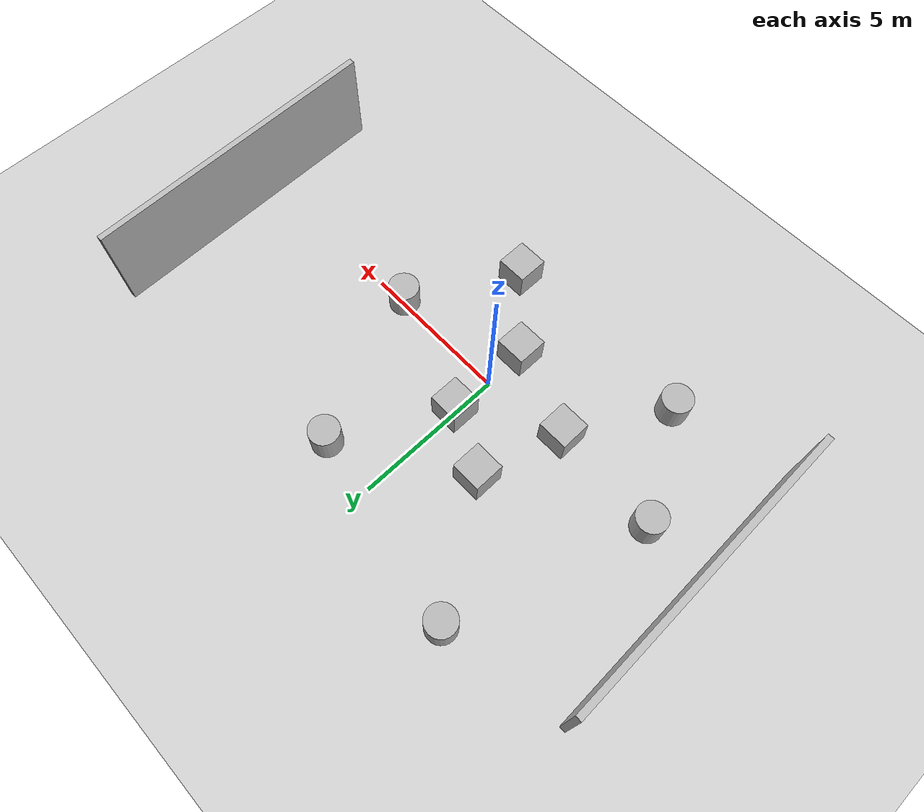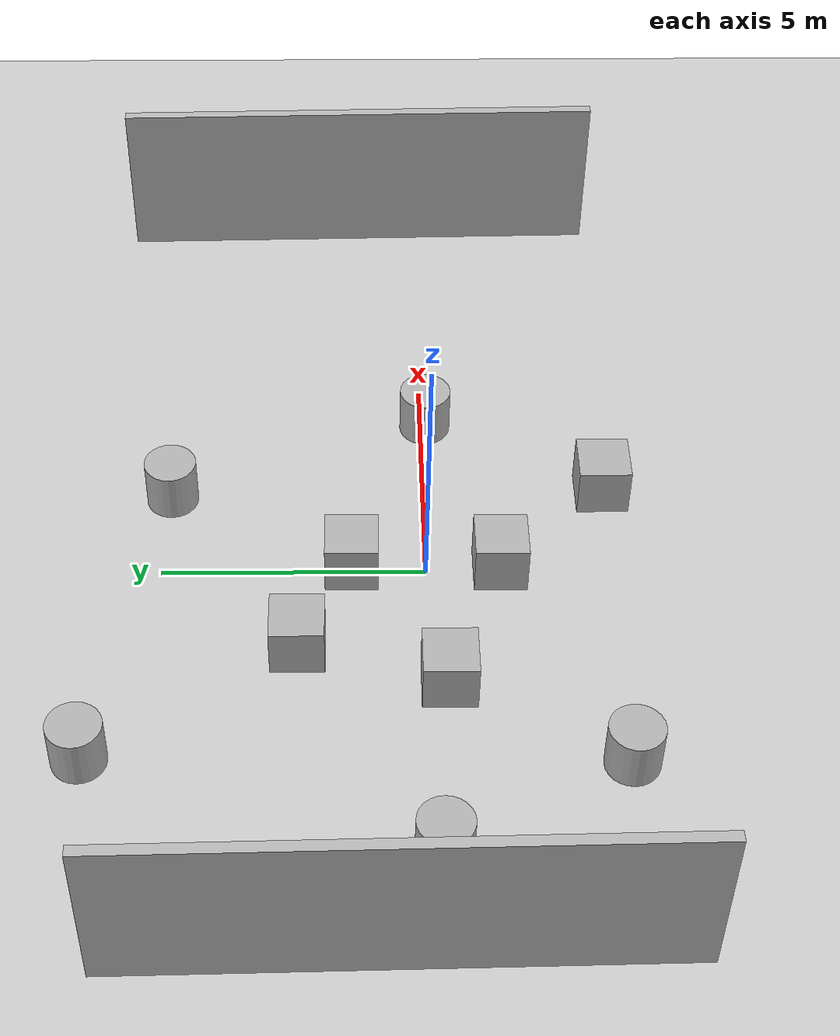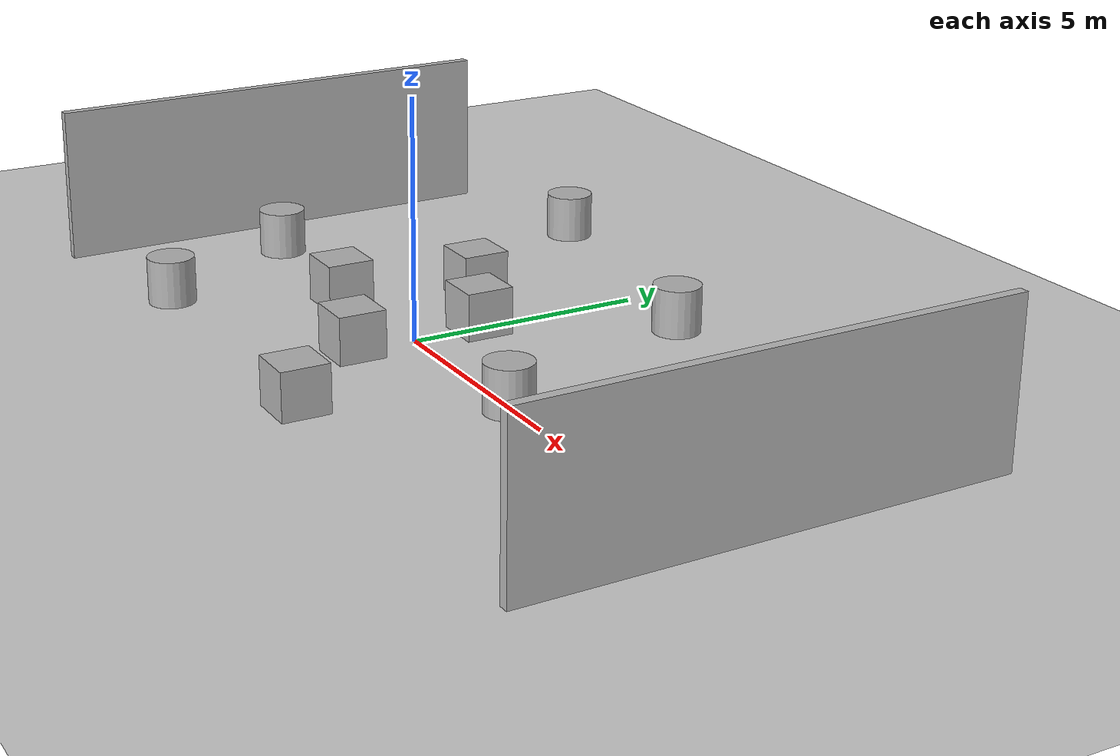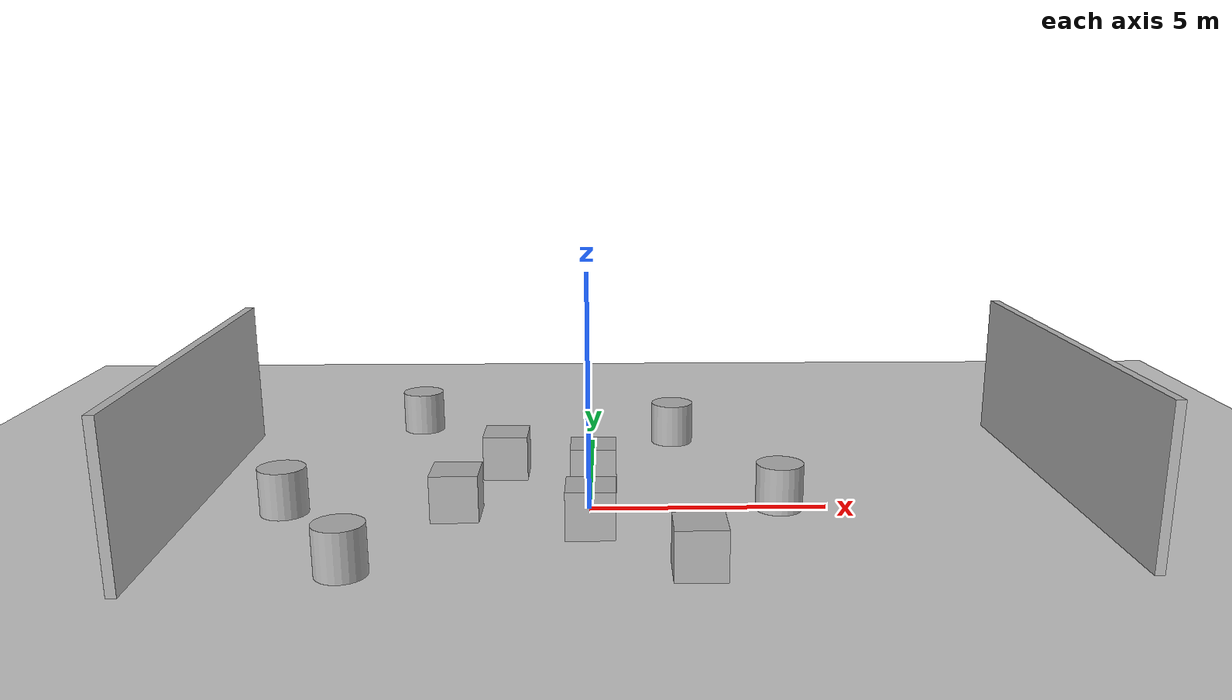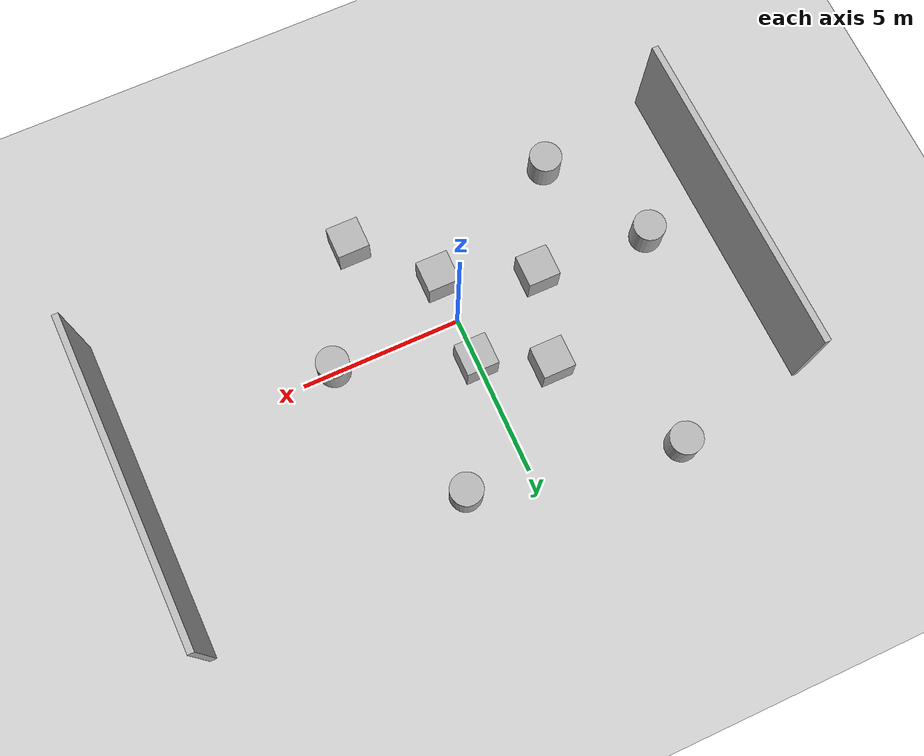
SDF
<sdf version="1.10">
 <world name="empty">
  <physics name="1ms" type="ignored">
   <max_step_size>0.001</max_step_size>
   <real_time_factor>1</real_time_factor>
   <real_time_update_rate>1000</real_time_update_rate>
  </physics>
  <plugin name="gz::sim::systems::Physics" filename="gz-sim-physics-system"/>
  <plugin name="gz::sim::systems::UserCommands" filename="gz-sim-user-commands-system"/>
  <plugin name="gz::sim::systems::SceneBroadcaster" filename="gz-sim-scene-broadcaster-system"/>
  <plugin name="gz::sim::systems::Contact" filename="gz-sim-contact-system"/>
  <plugin name="gz::sim::systems::Sensors" filename="gz-sim-sensors-system">
   <render_engine>ogre2</render_engine>
  </plugin>
  <plugin name="gz::sim::systems::Imu" filename="gz-sim-imu-system"/>
  <plugin name="gz::sim::systems::NavSat" filename="gz-sim-navsat-system"/>
  <gravity>0 0 -9.8000000000000007</gravity>
  <magnetic_field>5.5644999999999998e-06 2.2875799999999999e-05 -4.2388400000000002e-05</magnetic_field>
  <atmosphere type="adiabatic"/>
  <scene>
   <ambient>0.400000006 0.400000006 0.400000006 1</ambient>
   <background>0.699999988 0.699999988 0.699999988 1</background>
   <shadows>true</shadows>
  </scene>
  <model name="ground_plane">
   <static>true</static>
   <link name="link">
    <collision name="collision">
     <geometry><plane><normal>0 0 1</normal><size>100 100</size></plane></geometry>
    </collision>
    <visual name="visual">
     <geometry><plane><normal>0 0 1</normal><size>100 100</size></plane></geometry>
     <material>
      <ambient>0.800000012 0.800000012 0.800000012 1</ambient>
      <diffuse>0.800000012 0.800000012 0.800000012 1</diffuse>
      <specular>0.800000012 0.800000012 0.800000012 1</specular>
     </material>
    </visual>
    <inertial>
     <mass>1</mass>
     <inertia><ixx>1</ixx><ixy>0</ixy><ixz>0</ixz><iyy>1</iyy><iyz>0</iyz><izz>1</izz></inertia>
    </inertial>
   </link>
  </model>
  <model name="box">
   <pose>0.066399747407607429 1.4088902759226405 0.49999933691924936 -1.2496807362320155e-09 -1.3147452045443647e-06 -2.6323841889542261e-07</pose>
   <link name="box_link">
    <inertial>
     <inertia><ixx>0.16666</ixx><ixy>0</ixy><ixz>0</ixz><iyy>0.16666</iyy><iyz>0</iyz><izz>0.16666</izz></inertia>
     <mass>1</mass>
    </inertial>
    <collision name="box_collision"><geometry><box><size>1 1 1</size></box></geometry></collision>
    <visual name="box_visual">
     <geometry><box><size>1 1 1</size></box></geometry>
     <material>
      <ambient>0.300000012 0.300000012 0.300000012 1</ambient>
      <diffuse>0.699999988 0.699999988 0.699999988 1</diffuse>
      <specular>1 1 1 1</specular>
     </material>
    </visual>
   </link>
   <static>false</static>
  </model>
  <model name="box_0">
   <pose>0.046418805450898937 -1.3879084659294745 0.49999999951969215 3.7737599118723361e-21 -1.0348333999649783e-20 -1.0052452213116931e-21</pose>
   <link name="box_link">
    <inertial>
     <inertia><ixx>0.16666</ixx><ixy>0</ixy><ixz>0</ixz><iyy>0.16666</iyy><iyz>0</iyz><izz>0.16666</izz></inertia>
     <mass>1</mass>
    </inertial>
    <collision name="box_collision"><geometry><box><size>1 1 1</size></box></geometry></collision>
    <visual name="box_visual">
     <geometry><box><size>1 1 1</size></box></geometry>
     <material>
      <ambient>0.300000012 0.300000012 0.300000012 1</ambient>
      <diffuse>0.699999988 0.699999988 0.699999988 1</diffuse>
      <specular>1 1 1 1</specular>
     </material>
    </visual>
   </link>
   <static>false</static>
  </model>
  <model name="box_1">
   <pose>-1.9234735221427828 2.391466343172195 0.49999999970892495 1.9456243348768095e-21 -2.0287702973480091e-21 -7.5527752180039009e-22</pose>
   <link name="box_link">
    <inertial>
     <inertia><ixx>0.16666</ixx><ixy>0</ixy><ixz>0</ixz><iyy>0.16666</iyy><iyz>0</iyz><izz>0.16666</izz></inertia>
     <mass>1</mass>
    </inertial>
    <collision name="box_collision"><geometry><box><size>1 1 1</size></box></geometry></collision>
    <visual name="box_visual">
     <geometry><box><size>1 1 1</size></box></geometry>
     <material>
      <ambient>0.300000012 0.300000012 0.300000012 1</ambient>
      <diffuse>0.699999988 0.699999988 0.699999988 1</diffuse>
      <specular>1 1 1 1</specular>
     </material>
    </visual>
   </link>
   <static>false</static>
  </model>
  <model name="box_2">
   <pose>-2.7467044450983589 -0.34011748740916747 0.49999999970892495 1.9456243348768095e-21 -2.0287702973480091e-21 -7.5527752180039009e-22</pose>
   <link name="box_link">
    <inertial>
     <inertia><ixx>0.16666</ixx><ixy>0</ixy><ixz>0</ixz><iyy>0.16666</iyy><iyz>0</iyz><izz>0.16666</izz></inertia>
     <mass>1</mass>
    </inertial>
    <collision name="box_collision"><geometry><box><size>1 1 1</size></box></geometry></collision>
    <visual name="box_visual">
     <geometry><box><size>1 1 1</size></box></geometry>
     <material>
      <ambient>0.300000012 0.300000012 0.300000012 1</ambient>
      <diffuse>0.699999988 0.699999988 0.699999988 1</diffuse>
      <specular>1 1 1 1</specular>
     </material>
    </visual>
   </link>
   <static>false</static>
  </model>
  <model name="box_3">
   <pose>2.0719250647523726 -3.4763490958118304 0.49999999970892495 1.9456243348768095e-21 -2.0287702973480091e-21 -7.5527752180039009e-22</pose>
   <link name="box_link">
    <inertial>
     <inertia><ixx>0.16666</ixx><ixy>0</ixy><ixz>0</ixz><iyy>0.16666</iyy><iyz>0</iyz><izz>0.16666</izz></inertia>
     <mass>1</mass>
    </inertial>
    <collision name="box_collision"><geometry><box><size>1 1 1</size></box></geometry></collision>
    <visual name="box_visual">
     <geometry><box><size>1 1 1</size></box></geometry>
     <material>
      <ambient>0.300000012 0.300000012 0.300000012 1</ambient>
      <diffuse>0.699999988 0.699999988 0.699999988 1</diffuse>
      <specular>1 1 1 1</specular>
     </material>
    </visual>
   </link>
   <static>false</static>
  </model>
  <model name="cutout_wall">
   <static>true</static>
   <link name="link">
    <pose>0 0 1.3999999999999999 0 0 0</pose>
    <collision name="collision">
     <geometry><box><size>10 0.20000000000000001 3.7999999999999998</size></box></geometry>
     <surface>
      <contact>
       <collide_without_contact>true</collide_without_contact>
       <collide_without_contact_bitmask>2</collide_without_contact_bitmask>
      </contact>
     </surface>
    </collision>
    <visual name="visual">
     <cast_shadows>false</cast_shadows>
     <geometry><box><size>10 0.20000000000000001 3.7999999999999998</size></box></geometry>
     <material>
      <script>
       <uri>https://fuel.gazebosim.org/1.0/openrobotics/models/cutout wall/2/files/materials/scripts</uri>
       <uri>https://fuel.gazebosim.org/1.0/openrobotics/models/cutout wall/2/files/materials/textures</uri>
       <name>drc_practice/cutout_wall</name>
      </script>
     </material>
    </visual>
    <sensor name="mud_contact" type="contact">
     <always_on>true</always_on>
     <update_rate>1000</update_rate>
     <contact><collision>collision</collision><topic>__default_topic__</topic></contact>
    </sensor>
    <inertial>
     <mass>1</mass>
     <inertia><ixx>1</ixx><ixy>0</ixy><ixz>0</ixz><iyy>1</iyy><iyz>0</iyz><izz>1</izz></inertia>
    </inertial>
   </link>
   <pose>10.384707450866699 1.2399295568466187 0 0 0 1.58966996564156</pose>
  </model>
  <model name="cutout_wall_1">
   <static>true</static>
   <link name="link">
    <pose>0 0 1.3999999999999999 0 0 0</pose>
    <collision name="collision">
     <geometry><box><size>10 0.20000000000000001 3.7999999999999998</size></box></geometry>
     <surface>
      <contact>
       <collide_without_contact>true</collide_without_contact>
       <collide_without_contact_bitmask>2</collide_without_contact_bitmask>
      </contact>
     </surface>
    </collision>
    <visual name="visual">
     <cast_shadows>false</cast_shadows>
     <geometry><box><size>10 0.20000000000000001 3.7999999999999998</size></box></geometry>
     <material>
      <script>
       <uri>https://fuel.gazebosim.org/1.0/openrobotics/models/cutout wall/2/files/materials/scripts</uri>
       <uri>https://fuel.gazebosim.org/1.0/openrobotics/models/cutout wall/2/files/materials/textures</uri>
       <name>drc_practice/cutout_wall</name>
      </script>
     </material>
    </visual>
    <sensor name="mud_contact" type="contact">
     <always_on>true</always_on>
     <update_rate>1000</update_rate>
     <contact><collision>collision</collision><topic>__default_topic__</topic></contact>
    </sensor>
   </link>
   <pose>-8.3793361987465218 0.61003495304200417 0 0 0 1.5896699748692102</pose>
  </model>
  <model name="cylinder">
   <pose>-4.3656241774965796 6.1298580504200775 0.4999994281171376 1.3000660787944802e-19 4.1460634841603717e-19 8.0171835732472136e-21</pose>
   <link name="cylinder_link">
    <inertial>
     <inertia>
      <ixx>0.14580000000000001</ixx>
      <ixy>0</ixy>
      <ixz>0</ixz>
      <iyy>0.14580000000000001</iyy>
      <iyz>0</iyz>
      <izz>0.125</izz>
     </inertia>
     <mass>1</mass>
    </inertial>
    <collision name="cylinder_collision">
     <geometry><cylinder><radius>0.5</radius><length>1</length></cylinder></geometry>
    </collision>
    <visual name="cylinder_visual">
     <geometry><cylinder><radius>0.5</radius><length>1</length></cylinder></geometry>
     <material>
      <ambient>0.300000012 0.300000012 0.300000012 1</ambient>
      <diffuse>0.699999988 0.699999988 0.699999988 1</diffuse>
      <specular>1 1 1 1</specular>
     </material>
    </visual>
   </link>
   <static>false</static>
  </model>
  <model name="cylinder_0">
   <pose>1.9718640658109108 4.9048574111928831 0.49999942826135163 1.1759925571244005e-09 -2.7568161359055959e-10 -1.3843849097293601e-16</pose>
   <link name="cylinder_link">
    <inertial>
     <inertia>
      <ixx>0.14580000000000001</ixx>
      <ixy>0</ixy>
      <ixz>0</ixz>
      <iyy>0.14580000000000001</iyy>
      <iyz>0</iyz>
      <izz>0.125</izz>
     </inertia>
     <mass>1</mass>
    </inertial>
    <collision name="cylinder_collision">
     <geometry><cylinder><radius>0.5</radius><length>1</length></cylinder></geometry>
    </collision>
    <visual name="cylinder_visual">
     <geometry><cylinder><radius>0.5</radius><length>1</length></cylinder></geometry>
     <material>
      <ambient>0.300000012 0.300000012 0.300000012 1</ambient>
      <diffuse>0.699999988 0.699999988 0.699999988 1</diffuse>
      <specular>1 1 1 1</specular>
     </material>
    </visual>
   </link>
   <static>false</static>
  </model>
  <model name="cylinder_1">
   <pose>3.9905645265053185 -0.071509959026989034 0.4999994283186282 -4.4913889797838544e-10 9.8839195174185896e-11 -1.5891705022741918e-21</pose>
   <link name="cylinder_link">
    <inertial>
     <inertia>
      <ixx>0.14580000000000001</ixx>
      <ixy>0</ixy>
      <ixz>0</ixz>
      <iyy>0.14580000000000001</iyy>
      <iyz>0</iyz>
      <izz>0.125</izz>
     </inertia>
     <mass>1</mass>
    </inertial>
    <collision name="cylinder_collision">
     <geometry><cylinder><radius>0.5</radius><length>1</length></cylinder></geometry>
    </collision>
    <visual name="cylinder_visual">
     <geometry><cylinder><radius>0.5</radius><length>1</length></cylinder></geometry>
     <material>
      <ambient>0.300000012 0.300000012 0.300000012 1</ambient>
      <diffuse>0.699999988 0.699999988 0.699999988 1</diffuse>
      <specular>1 1 1 1</specular>
     </material>
    </visual>
   </link>
   <static>false</static>
  </model>
  <model name="cylinder_2">
   <pose>-6.3669215348455452 -0.12981921172169808 0.4999994281171376 -2.3766474134076905e-20 -1.4173182705928734e-19 1.7502704039026167e-20</pose>
   <link name="cylinder_link">
    <inertial>
     <inertia>
      <ixx>0.14580000000000001</ixx>
      <ixy>0</ixy>
      <ixz>0</ixz>
      <iyy>0.14580000000000001</iyy>
      <iyz>0</iyz>
      <izz>0.125</izz>
     </inertia>
     <mass>1</mass>
    </inertial>
    <collision name="cylinder_collision">
     <geometry><cylinder><radius>0.5</radius><length>1</length></cylinder></geometry>
    </collision>
    <visual name="cylinder_visual">
     <geometry><cylinder><radius>0.5</radius><length>1</length></cylinder></geometry>
     <material>
      <ambient>0.300000012 0.300000012 0.300000012 1</ambient>
      <diffuse>0.699999988 0.699999988 0.699999988 1</diffuse>
      <specular>1 1 1 1</specular>
     </material>
    </visual>
   </link>
   <static>false</static>
  </model>
  <model name="cylinder_3">
   <pose>-4.4874374044799259 -3.4418351567969059 0.49999942828199273 1.1558864395929437e-09 -2.6135817885185762e-10 -1.2652968864737227e-16</pose>
   <link name="cylinder_link">
    <inertial>
     <inertia>
      <ixx>0.14580000000000001</ixx>
      <ixy>0</ixy>
      <ixz>0</ixz>
      <iyy>0.14580000000000001</iyy>
      <iyz>0</iyz>
      <izz>0.125</izz>
     </inertia>
     <mass>1</mass>
    </inertial>
    <collision name="cylinder_collision">
     <geometry><cylinder><radius>0.5</radius><length>1</length></cylinder></geometry>
    </collision>
    <visual name="cylinder_visual">
     <geometry><cylinder><radius>0.5</radius><length>1</length></cylinder></geometry>
     <material>
      <ambient>0.300000012 0.300000012 0.300000012 1</ambient>
      <diffuse>0.699999988 0.699999988 0.699999988 1</diffuse>
      <specular>1 1 1 1</specular>
     </material>
    </visual>
   </link>
   <static>false</static>
  </model>
  <light name="sun" type="directional">
   <pose>0 0 10 0 0 0</pose>
   <intensity>1</intensity>
   <direction>-0.5 0.10000000000000001 -0.90000000000000002</direction>
   <diffuse>0.800000012 0.800000012 0.800000012 1</diffuse>
   <specular>0.200000003 0.200000003 0.200000003 1</specular>
   <attenuation>
    <range>1000</range>
    <linear>0.01</linear>
    <constant>0.90000000000000002</constant>
    <quadratic>0.001</quadratic>
   </attenuation>
   <spot><inner_angle>0</inner_angle><outer_angle>0</outer_angle><falloff>0</falloff></spot>
  </light>
 </world>
</sdf>
